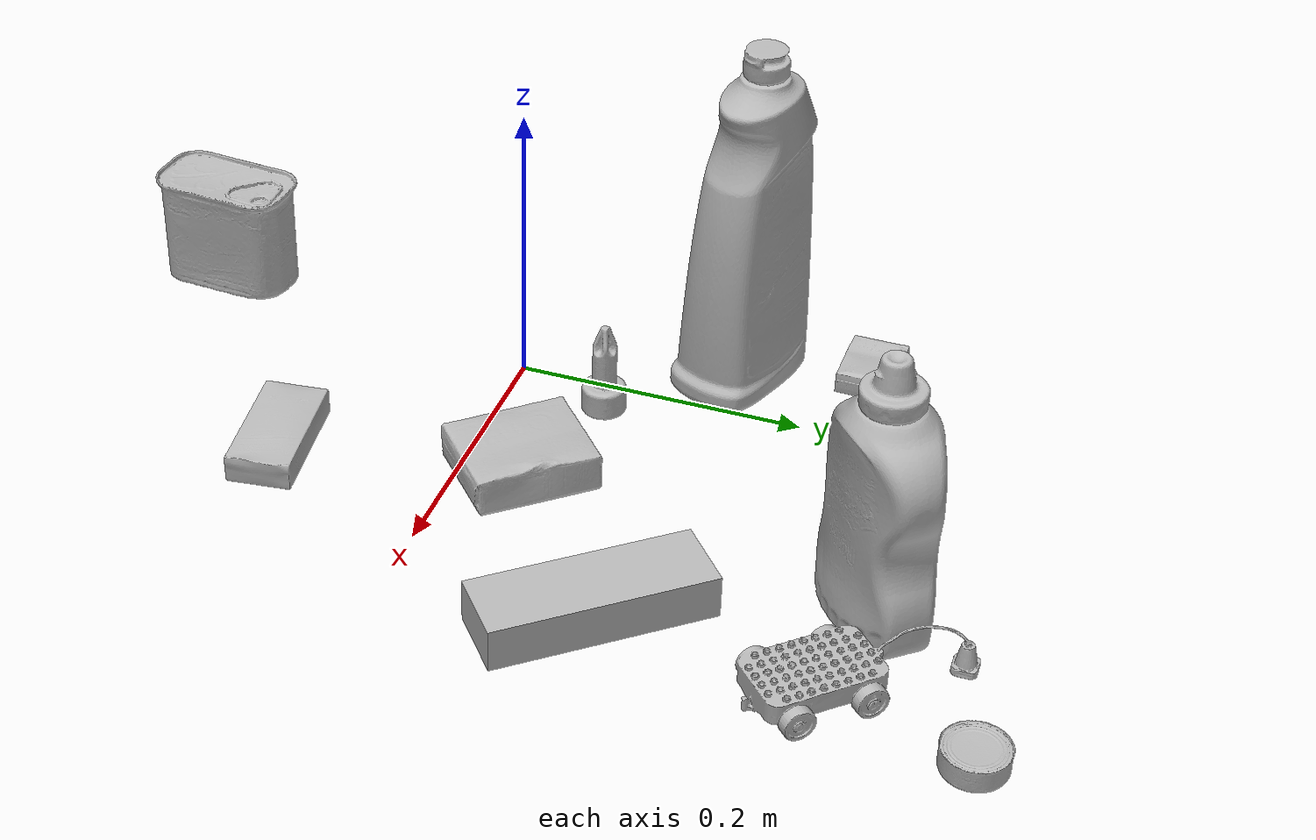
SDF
<sdf version="1.4">
  <world name="default">
    <light name="light1" type="point">
      <pose>0 0 1 0 0 0</pose>
      <diffuse>3 3 3 1</diffuse>
      <specular>3 3 3 1</specular>
    </light>
    <light name="light2" type="point">
      <pose>0 0.5 2 0 0 0</pose>
      <diffuse>1 1 1 1</diffuse>
      <specular>1 1 1 1</specular>
    </light>
    <light name="light3" type="point">
      <pose>0 0.5 2 0 0 0</pose>
      <diffuse>3 3 3 1</diffuse>
      <specular>3 3 3 1</specular>
    </light>
    <scene>
      <ambient>0.7 0.7 0.7</ambient>
    </scene>
    <model name="bottle1">
      <link name="link_bottle1">
        <collision name="default">
          <geometry>
            <mesh>
              <uri>model://bleach_cleanser/collision_meshes/collision.obj</uri>
              <scale>1.0 1.0 1.0</scale>
            </mesh>
          </geometry>
          <surface>
            <friction>
              <ode>
                <mu>0.5</mu>
                <mu2>0.5</mu2>
              </ode>
            </friction>
          <contact>
        <ode>
            <max_vel>0</max_vel>
            <min_depth>0.0001</min_depth>
            <kp>1e8</kp>
        </ode>
    </contact></surface>
        </collision>
        <visual name="default">
          <geometry>
            <mesh>
              <uri>model://bleach_cleanser/visual_meshes/visual.dae</uri>
              <scale>1.0 1.0 1.0</scale>
            </mesh>
          </geometry>
        </visual>
        <inertial>
          <mass>0.8435376882553101</mass>
          <pose>0.00012193185102660209 0.0037838835269212723 -0.02442161925137043 -0.0738167136291003 0.00042011570398771517 -0.0068750683244174</pose>
          <inertia>
            <ixx>0.0041056215</ixx>
            <iyy>0.0038258375</iyy>
            <izz>0.0007019545</izz>
            <ixy>0</ixy>
            <ixz>0</ixz>
            <iyz>0</iyz>
          </inertia>
        </inertial>
      </link>
      <pose>-0.046891193836927414 0.1440240889787674 0.125865638256073 -0.00029410875072536063 -0.003037450158134236 1.2191974613938625</pose>
    </model>
    <model name="bottle2">
      <link name="link_bottle2">
        <collision name="default">
          <geometry>
            <mesh>
              <uri>model://mustard_bottle/collision_meshes/collision.obj</uri>
              <scale>1.0 1.0 1.0</scale>
            </mesh>
          </geometry>
          <surface>
            <friction>
              <ode>
                <mu>0.5</mu>
                <mu2>0.5</mu2>
              </ode>
            </friction>
          <contact>
        <ode>
            <max_vel>0</max_vel>
            <min_depth>0.0001</min_depth>
            <kp>1e8</kp>
        </ode>
    </contact></surface>
        </collision>
        <visual name="default">
          <geometry>
            <mesh>
              <uri>model://mustard_bottle/visual_meshes/visual.dae</uri>
              <scale>1.0 1.0 1.0</scale>
            </mesh>
          </geometry>
        </visual>
        <inertial>
          <mass>0.5862947106361389</mass>
          <pose>0.0005032453336752951 -0.00015647400869056582 -0.01747579500079155 0.0004182326333961274 0.0009465780125852031 0.02485369627950655</pose>
          <inertia>
            <ixx>0.0016280604</ixx>
            <iyy>0.001428485</iyy>
            <izz>0.00042907606</izz>
            <ixy>0</ixy>
            <ixz>0</ixz>
            <iyz>0</iyz>
          </inertia>
        </inertial>
      </link>
      <pose>0.17002977430820465 0.29199525713920593 0.09615198522806168 1.4746326539806102e-05 1.6394604952757148e-05 -0.8725366892745582</pose>
    </model>
    <model name="toy1">
      <link name="link_toy1">
        <collision name="default">
          <geometry>
            <mesh>
              <uri>model://d_toy_airplane/collision_meshes/collision.obj</uri>
              <scale>1.0 1.0 1.0</scale>
            </mesh>
          </geometry>
          <surface>
            <friction>
              <ode>
                <mu>0.5</mu>
                <mu2>0.5</mu2>
              </ode>
            </friction>
          <contact>
        <ode>
            <max_vel>0</max_vel>
            <min_depth>0.0001</min_depth>
            <kp>1e8</kp>
        </ode>
    </contact></surface>
        </collision>
        <visual name="default">
          <geometry>
            <mesh>
              <uri>model://d_toy_airplane/visual_meshes/visual.dae</uri>
              <scale>1.0 1.0 1.0</scale>
            </mesh>
          </geometry>
        </visual>
        <inertial>
          <mass>0.016342557966709137</mass>
          <pose>9.410292841494083e-05 -5.809347931062803e-05 -0.011728093959391117 0.0002665850352305412 0.004678995185611379 0.5193821656772198</pose>
          <inertia>
            <ixx>4.8991824e-06</ixx>
            <iyy>4.9028777e-06</iyy>
            <izz>1.4790946e-06</izz>
            <ixy>0</ixy>
            <ixz>0</ixz>
            <iyz>0</iyz>
          </inertia>
        </inertial>
      </link>
      <pose>0.025072479620575905 0.06818874180316925 0.03334031626582146 -0.00035873100332061645 -0.0001981123917745721 -1.9350743582447156</pose>
    </model>
    <model name="toy2">
      <link name="link_toy2">
        <collision name="default">
          <geometry>
            <mesh>
              <uri>model://g_lego_duplo/collision_meshes/collision.obj</uri>
              <scale>0.5 0.5 0.5</scale>
            </mesh>
          </geometry>
          <surface>
            <friction>
              <ode>
                <mu>0.5</mu>
                <mu2>0.5</mu2>
              </ode>
            </friction>
          <contact>
        <ode>
            <max_vel>0</max_vel>
            <min_depth>0.0001</min_depth>
            <kp>1e8</kp>
        </ode>
    </contact></surface>
        </collision>
        <visual name="default">
          <geometry>
            <mesh>
              <uri>model://g_lego_duplo/visual_meshes/visual.dae</uri>
              <scale>0.5 0.5 0.5</scale>
            </mesh>
          </geometry>
        </visual>
        <inertial>
          <mass>0.06075087562203407</mass>
          <pose>-0.02502383105456829 0.0008777320035733283 0.0019403373589739203 0.010962969944672394 0.038108282316868566 -0.09653022106038826</pose>
          <inertia>
            <ixx>2.2007183e-05</ixx>
            <iyy>6.65348e-05</iyy>
            <izz>8.323752e-05</izz>
            <ixy>0</ixy>
            <ixz>0</ixz>
            <iyz>0</iyz>
          </inertia>
        </inertial>
      </link>
      <pose>0.23452433943748474 0.2996353507041931 0.014996818266808987 -6.265323968133497e-05 -0.003688318722817264 2.3226883654438315</pose>
    </model>
    <model name="can1">
      <link name="link_can1">
        <collision name="default">
          <geometry>
            <mesh>
              <uri>model://potted_meat_can/collision_meshes/collision.obj</uri>
              <scale>1.0 1.0 1.0</scale>
            </mesh>
          </geometry>
          <surface>
            <friction>
              <ode>
                <mu>0.5</mu>
                <mu2>0.5</mu2>
              </ode>
            </friction>
          <contact>
        <ode>
            <max_vel>0</max_vel>
            <min_depth>0.0001</min_depth>
            <kp>1e8</kp>
        </ode>
    </contact></surface>
        </collision>
        <visual name="default">
          <geometry>
            <mesh>
              <uri>model://potted_meat_can/visual_meshes/visual.dae</uri>
              <scale>1.0 1.0 1.0</scale>
            </mesh>
          </geometry>
        </visual>
        <inertial>
          <mass>0.20078136026859283</mass>
          <pose>0.00022888144303578883 -5.9891190176131204e-05 -0.0006367445457726717 -0.02809335636395505 -0.007232596981483405 0.015406261474000347</pose>
          <inertia>
            <ixx>0.0002582842</ixx>
            <iyy>0.00015692727</iyy>
            <izz>0.0001878526</izz>
            <ixy>0</ixy>
            <ixz>0</ixz>
            <iyz>0</iyz>
          </inertia>
        </inertial>
      </link>
      <pose>-0.03624957799911499 -0.24528883397579193 0.04212801530957222 1.0187286132820287e-08 -4.996981534993734e-07 3.052240774330943</pose>
    </model>
    <model name="can2">
      <link name="link_can2">
        <collision name="default">
          <geometry>
            <mesh>
              <uri>model://tuna_fish_can/collision_meshes/collision.obj</uri>
              <scale>0.5 0.5 0.5</scale>
            </mesh>
          </geometry>
          <surface>
            <friction>
              <ode>
                <mu>0.5</mu>
                <mu2>0.5</mu2>
              </ode>
            </friction>
          <contact>
        <ode>
            <max_vel>0</max_vel>
            <min_depth>0.0001</min_depth>
            <kp>1e8</kp>
        </ode>
    </contact></surface>
        </collision>
        <visual name="default">
          <geometry>
            <mesh>
              <uri>model://tuna_fish_can/visual_meshes/visual.dae</uri>
              <scale>0.5 0.5 0.5</scale>
            </mesh>
          </geometry>
        </visual>
        <inertial>
          <mass>0.014736190438270569</mass>
          <pose>-2.036184559983667e-05 -7.256420758494642e-06 -0.0005269023822620511 -0.0017944748482382063 0.00017166274907885265 0.24056368509195397</pose>
          <inertia>
            <ixx>1.992355e-06</ixx>
            <iyy>1.9840513e-06</iyy>
            <izz>3.409204e-06</izz>
            <ixy>0</ixy>
            <ixz>0</ixz>
            <iyz>0</iyz>
          </inertia>
        </inertial>
      </link>
      <pose>0.2784300744533539 0.37836623191833496 0.008519998751580715 1.095344387246599e-08 1.2149573290832573e-08 2.190192572975126</pose>
    </model>
    <model name="box1">
      <link name="link_box1">
        <collision name="default">
          <geometry>
            <mesh>
              <uri>model://sugar_box/collision_meshes/collision.obj</uri>
              <scale>0.5 0.5 0.5</scale>
            </mesh>
          </geometry>
          <surface>
            <friction>
              <ode>
                <mu>0.5</mu>
                <mu2>0.5</mu2>
              </ode>
            </friction>
          <contact>
        <ode>
            <max_vel>0</max_vel>
            <min_depth>0.0001</min_depth>
            <kp>1e8</kp>
        </ode>
    </contact></surface>
        </collision>
        <visual name="default">
          <geometry>
            <mesh>
              <uri>model://sugar_box/visual_meshes/visual.dae</uri>
              <scale>0.5 0.5 0.5</scale>
            </mesh>
          </geometry>
        </visual>
        <inertial>
          <mass>0.12222740799188614</mass>
          <pose>0.0005171863595023751 1.9245549992774613e-05 -0.00018182404164690524 -0.000404625834306888 0.0010506637544316808 0.0026153790219515644</pose>
          <inertia>
            <ixx>2.5459884e-05</ixx>
            <iyy>8.229157e-05</iyy>
            <izz>9.851283e-05</izz>
            <ixy>0</ixy>
            <ixz>0</ixz>
            <iyz>0</iyz>
          </inertia>
        </inertial>
      </link>
      <pose>0.1453152298927307 -0.12129650264978409 0.011399305425584316 0.0007744753565989505 -0.023433026625210348 -3.020081075558065</pose>
    </model>
    <model name="box2">
      <link name="link_box2">
        <collision name="default">
          <geometry>
            <mesh>
              <uri>model://jenga/collision_meshes/collision.obj</uri>
              <scale>1.0 1.0 1.0</scale>
            </mesh>
          </geometry>
          <surface>
            <friction>
              <ode>
                <mu>0.5</mu>
                <mu2>0.5</mu2>
              </ode>
            </friction>
          <contact>
        <ode>
            <max_vel>0</max_vel>
            <min_depth>0.0001</min_depth>
            <kp>1e8</kp>
        </ode>
    </contact></surface>
        </collision>
        <visual name="default">
          <geometry>
            <mesh>
              <uri>model://jenga/visual_meshes/visual.dae</uri>
              <scale>1.0 1.0 1.0</scale>
            </mesh>
          </geometry>
        </visual>
        <inertial>
          <mass>0.17645145952701569</mass>
          <pose>-2.502855807051674e-07 -0.00010250011109746993 -4.0923405322246253e-05 0.0 -7.342155186052628e-07 0.0</pose>
          <inertia>
            <ixx>4.8828406e-05</ixx>
            <iyy>0.00033085994</iyy>
            <izz>0.00035322108</izz>
            <ixy>0</ixy>
            <ixz>0</ixz>
            <iyz>0</iyz>
          </inertia>
        </inertial>
      </link>
      <pose>0.23352092504501343 0.13254141807556152 0.014999999664723873 8.213505951180086e-09 -9.306382513342024e-10 -0.871122845989793</pose>
    </model>
    <model name="box3">
      <link name="link_box3">
        <collision name="default">
          <geometry>
            <mesh>
              <uri>model://gelatin_box/collision_meshes/collision.obj</uri>
              <scale>1.0 1.0 1.0</scale>
            </mesh>
          </geometry>
          <surface>
            <friction>
              <ode>
                <mu>0.5</mu>
                <mu2>0.5</mu2>
              </ode>
            </friction>
          <contact>
        <ode>
            <max_vel>0</max_vel>
            <min_depth>0.0001</min_depth>
            <kp>1e8</kp>
        </ode>
    </contact></surface>
        </collision>
        <visual name="default">
          <geometry>
            <mesh>
              <uri>model://gelatin_box/visual_meshes/visual.dae</uri>
              <scale>1.0 1.0 1.0</scale>
            </mesh>
          </geometry>
        </visual>
        <inertial>
          <mass>0.13059620559215546</mass>
          <pose>0.0004319618456065655 0.00011156871914863586 -0.0003640321083366871 -0.0010503721928909568 -0.00475581775899517 0.01644055574591333</pose>
          <inertia>
            <ixx>9.219027e-05</ixx>
            <iyy>6.585102e-05</iyy>
            <izz>0.00014033413</izz>
            <ixy>0</ixy>
            <ixz>0</ixz>
            <iyz>0</iyz>
          </inertia>
        </inertial>
      </link>
      <pose>0.11362453550100327 0.040960509330034256 0.015168314799666405 0.005597463455355246 -0.007304558415118011 0.7101410975291778</pose>
    </model>
    <model name="box4">
      <link name="link_box4">
        <collision name="default">
          <geometry>
            <mesh>
              <uri>model://cracker_box/collision_meshes/collision.obj</uri>
              <scale>0.25 0.25 0.25</scale>
            </mesh>
          </geometry>
          <surface>
            <friction>
              <ode>
                <mu>0.5</mu>
                <mu2>0.5</mu2>
              </ode>
            </friction>
          <contact>
        <ode>
            <max_vel>0</max_vel>
            <min_depth>0.0001</min_depth>
            <kp>1e8</kp>
        </ode>
    </contact></surface>
        </collision>
        <visual name="default">
          <geometry>
            <mesh>
              <uri>model://cracker_box/visual_meshes/visual.dae</uri>
              <scale>0.25 0.25 0.25</scale>
            </mesh>
          </geometry>
        </visual>
        <inertial>
          <mass>0.04771818593144417</mass>
          <pose>0.0002366032567806542 6.358561950037256e-05 -0.00042573839891701937 -0.00031620769108308636 -0.011106489600173282 0.0025467959336867136</pose>
          <inertia>
            <ixx>7.5858593e-06</ixx>
            <iyy>1.2525745e-05</iyy>
            <izz>1.7875387e-05</izz>
            <ixy>0</ixy>
            <ixz>0</ixz>
            <iyz>0</iyz>
          </inertia>
        </inertial>
      </link>
      <pose>-0.07314535975456238 0.232326939702034 0.009096027351915836 -0.014050475609668964 -0.005016629312759745 -0.002780881533389633</pose>
    </model>
  <physics type="ode">
      <max_contacts>50</max_contacts>
      <ode>
        <solver>
          <type>quick</type>
          <iters>75</iters>
        </solver>
        <constraints>
          <contact_max_correcting_vel>0</contact_max_correcting_vel>
          <contact_surface_layer>0</contact_surface_layer>
        </constraints>
      </ode>
    </physics></world>
</sdf>
